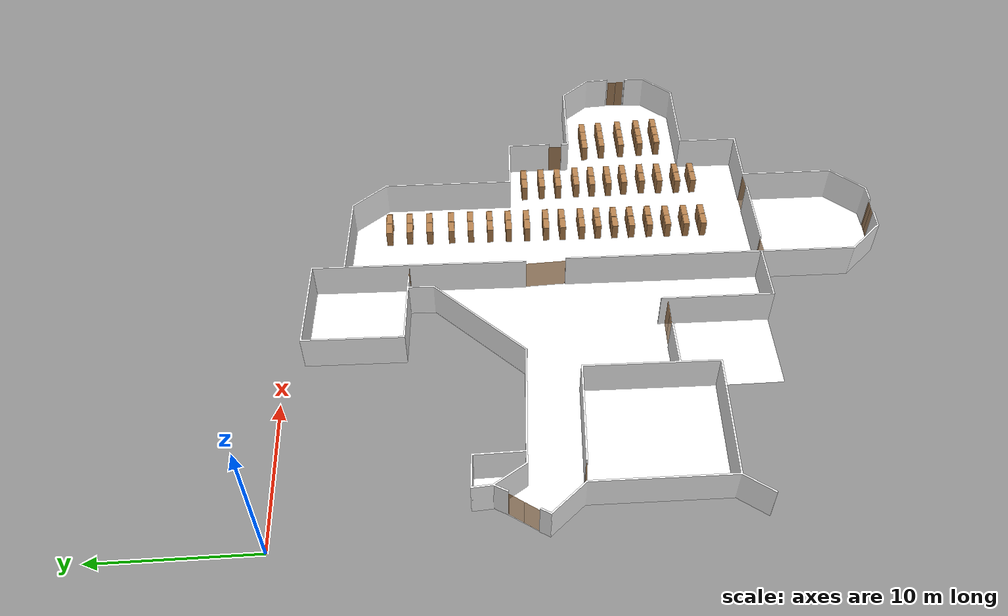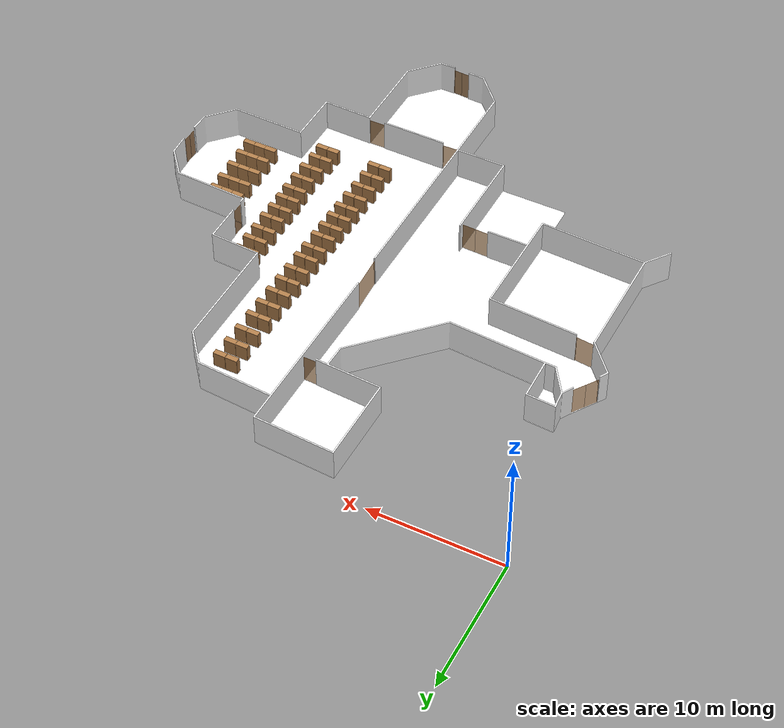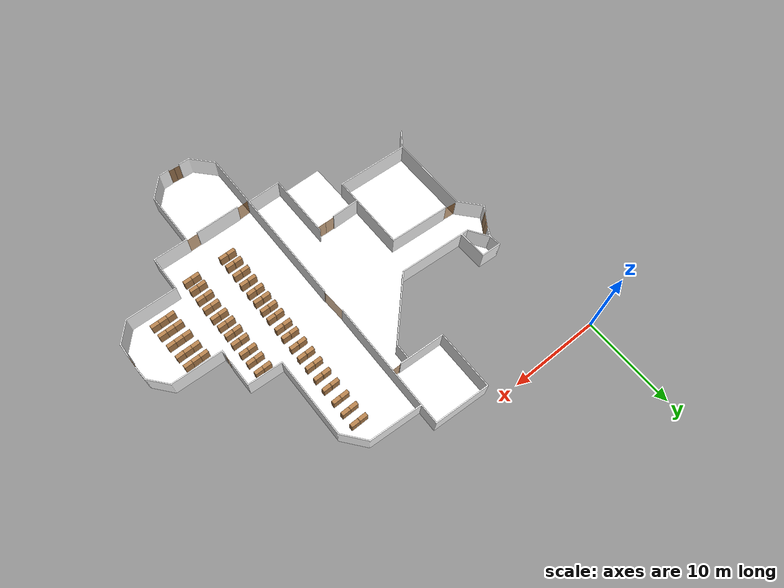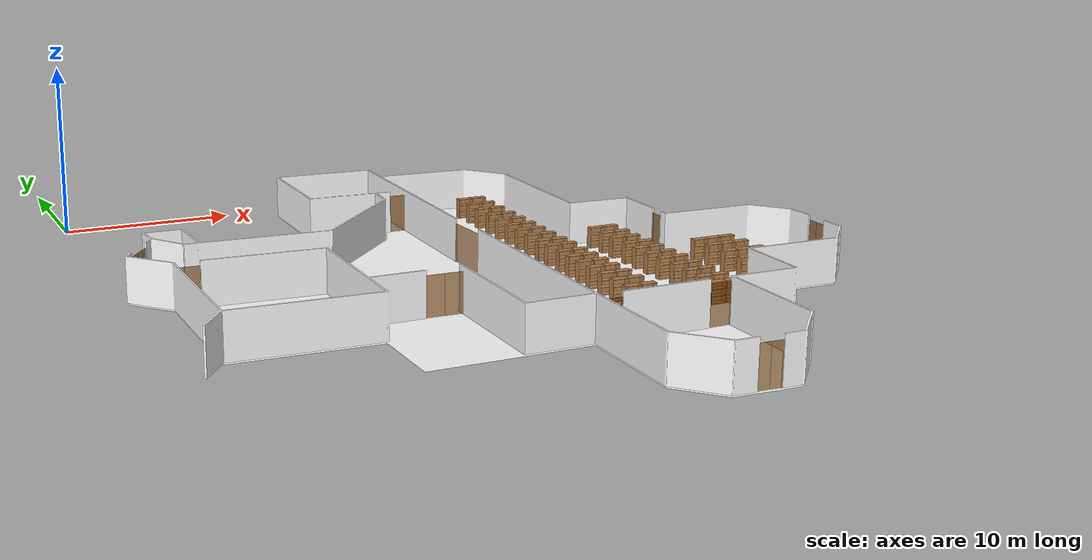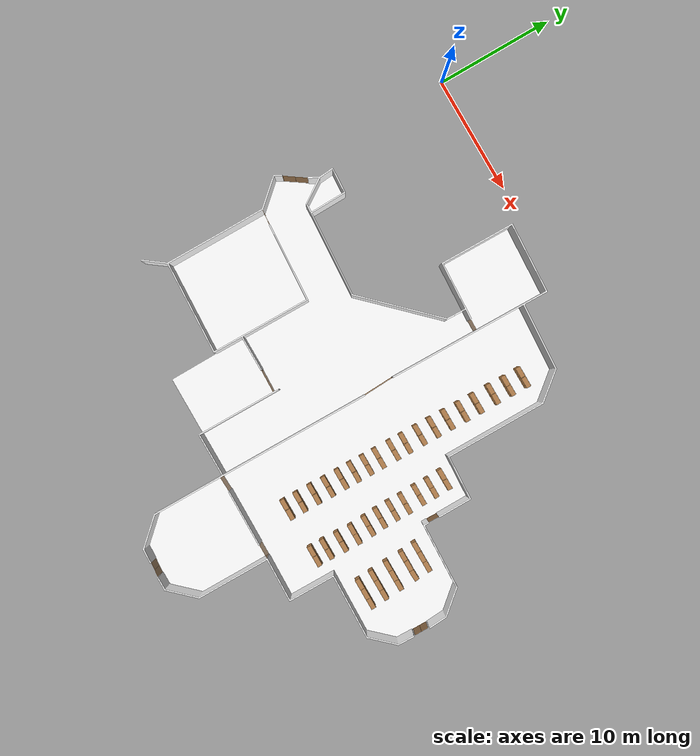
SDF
<sdf version="1.7">
 <world name="world">
  <scene><ambient>0.8 0.8 0.8 1.0</ambient><background>0 0 0</background><grid>false</grid></scene>
  <include><uri>model://sun</uri></include>
  <include>
   <name>OpenRobotics/Bookshelf</name>
   <uri>model://Bookshelf</uri>
   <pose>28.467041090443733 -15.898008054667084 0.0 0 0 0.0</pose>
   <static>True</static>
  </include>
  <include>
   <name>OpenRobotics/Bookshelf_2</name>
   <uri>model://Bookshelf</uri>
   <pose>28.510822227900935 -17.1345104671964 0.0 0 0 0.0</pose>
   <static>True</static>
  </include>
  <include>
   <name>OpenRobotics/Bookshelf_3</name>
   <uri>model://Bookshelf</uri>
   <pose>28.505506946037123 -18.310516579565203 0.0 0 0 0.0</pose>
   <static>True</static>
  </include>
  <include>
   <name>OpenRobotics/Bookshelf_4</name>
   <uri>model://Bookshelf</uri>
   <pose>28.557191068370784 -19.618425607659702 0.0 0 0 0.0</pose>
   <static>True</static>
  </include>
  <include>
   <name>OpenRobotics/Bookshelf_5</name>
   <uri>model://Bookshelf</uri>
   <pose>28.53998634023265 -20.75428735437286 0.0 0 0 0.0</pose>
   <static>True</static>
  </include>
  <include>
   <name>OpenRobotics/Bookshelf_6</name>
   <uri>model://Bookshelf</uri>
   <pose>28.547609573432066 -21.934070114381743 0.0 0 0 0.0</pose>
   <static>True</static>
  </include>
  <include>
   <name>OpenRobotics/Bookshelf_7</name>
   <uri>model://Bookshelf</uri>
   <pose>28.608805252785185 -23.06608527553556 0.0 0 0 0.0035</pose>
   <static>True</static>
  </include>
  <include>
   <name>OpenRobotics/Bookshelf_8</name>
   <uri>model://Bookshelf</uri>
   <pose>28.639368123502116 -24.351054666112546 0.0 0 0 -0.0078</pose>
   <static>True</static>
  </include>
  <include>
   <name>OpenRobotics/Bookshelf_9</name>
   <uri>model://Bookshelf</uri>
   <pose>28.608805252785185 -25.605461185972604 0.0 0 0 0.006</pose>
   <static>True</static>
  </include>
  <include>
   <name>OpenRobotics/Bookshelf_10</name>
   <uri>model://Bookshelf</uri>
   <pose>28.547609573432066 -26.89043057654959 0.0 0 0 -0.0045</pose>
   <static>True</static>
  </include>
  <include>
   <name>OpenRobotics/Bookshelf_11</name>
   <uri>model://Bookshelf</uri>
   <pose>28.547609573432066 -28.02244573770341 0.0 0 0 -0.0025</pose>
   <static>True</static>
  </include>
  <include>
   <name>OpenRobotics/Bookshelf_12</name>
   <uri>model://Bookshelf</uri>
   <pose>31.55927625263667 -20.608256978956504 0.0 0 0 0.0</pose>
   <static>True</static>
  </include>
  <include>
   <name>OpenRobotics/Bookshelf_13</name>
   <uri>model://Bookshelf</uri>
   <pose>31.670897171776762 -21.87336400046345 0.0 0 0 0.0</pose>
   <static>True</static>
  </include>
  <include>
   <name>OpenRobotics/Bookshelf_14</name>
   <uri>model://Bookshelf</uri>
   <pose>31.70810414482346 -23.324505887203877 0.0 0 0 0.0</pose>
   <static>True</static>
  </include>
  <include>
   <name>OpenRobotics/Bookshelf_15</name>
   <uri>model://Bookshelf</uri>
   <pose>31.782518090916852 -24.73844080089761 0.0 0 0 0.0</pose>
   <static>True</static>
  </include>
  <include>
   <name>OpenRobotics/Bookshelf_16</name>
   <uri>model://Bookshelf</uri>
   <pose>31.857001974929506 -26.003547822404556 0.0 0 0 0.0</pose>
   <static>True</static>
  </include>
  <include>
   <name>OpenRobotics/Bookshelf_17</name>
   <uri>model://Bookshelf</uri>
   <pose>32.45231354367665 -20.608256978956504 0.0 0 0 0.0</pose>
   <static>True</static>
  </include>
  <include>
   <name>OpenRobotics/Bookshelf_18</name>
   <uri>model://Bookshelf</uri>
   <pose>32.52672748977004 -21.87336400046345 0.0 0 0 0.0</pose>
   <static>True</static>
  </include>
  <include>
   <name>OpenRobotics/Bookshelf_19</name>
   <uri>model://Bookshelf</uri>
   <pose>32.60114143586344 -23.324505887203877 0.0 0 0 0.0</pose>
   <static>True</static>
  </include>
  <include>
   <name>OpenRobotics/Bookshelf_20</name>
   <uri>model://Bookshelf</uri>
   <pose>32.67555538195683 -24.73844080089761 0.0 0 0 0.0</pose>
   <static>True</static>
  </include>
  <include>
   <name>OpenRobotics/Bookshelf_21</name>
   <uri>model://Bookshelf</uri>
   <pose>32.74996932805022 -26.003547822404556 0.0 0 0 0.0</pose>
   <static>True</static>
  </include>
  <include>
   <name>OpenRobotics/Bookshelf_22</name>
   <uri>model://Bookshelf</uri>
   <pose>33.34535083471663 -20.608256978956504 0.0 0 0 0.0</pose>
   <static>True</static>
  </include>
  <include>
   <name>OpenRobotics/Bookshelf_23</name>
   <uri>model://Bookshelf</uri>
   <pose>33.41976478081002 -21.87336400046345 0.0 0 0 0.037</pose>
   <static>True</static>
  </include>
  <include>
   <name>OpenRobotics/Bookshelf_24</name>
   <uri>model://Bookshelf</uri>
   <pose>33.494178726903414 -23.324505887203877 0.0 0 0 0.0</pose>
   <static>True</static>
  </include>
  <include>
   <name>OpenRobotics/Bookshelf_25</name>
   <uri>model://Bookshelf</uri>
   <pose>33.56859267299681 -24.73844080089761 0.0 0 0 0.0</pose>
   <static>True</static>
  </include>
  <include>
   <name>OpenRobotics/Bookshelf_26</name>
   <uri>model://Bookshelf</uri>
   <pose>33.6430066190902 -26.003547822404556 0.0 0 0 0.0</pose>
   <static>True</static>
  </include>
  <include>
   <name>OpenRobotics/Bookshelf_27</name>
   <uri>model://Bookshelf</uri>
   <pose>23.45130333482354 -17.12653754440068 0.0 0 0 -0.0129</pose>
   <static>True</static>
  </include>
  <include>
   <name>OpenRobotics/Bookshelf_28</name>
   <uri>model://Bookshelf</uri>
   <pose>24.377561137512355 -17.143672334619552 0.0 0 0 -0.0167</pose>
   <static>True</static>
  </include>
  <include>
   <name>OpenRobotics/Bookshelf_29</name>
   <uri>model://Bookshelf</uri>
   <pose>23.42689500100155 -18.265896187076873 0.0 0 0 -0.0059</pose>
   <static>True</static>
  </include>
  <include>
   <name>OpenRobotics/Bookshelf_30</name>
   <uri>model://Bookshelf</uri>
   <pose>24.318883223252623 -20.727151441699707 0.0 0 0 0.0</pose>
   <static>True</static>
  </include>
  <include>
   <name>OpenRobotics/Bookshelf_31</name>
   <uri>model://Bookshelf</uri>
   <pose>24.30601464610865 -21.893925748726097 0.0 0 0 -0.0173</pose>
   <static>True</static>
  </include>
  <include>
   <name>OpenRobotics/Bookshelf_32</name>
   <uri>model://Bookshelf</uri>
   <pose>24.276780595857677 -24.300069922971492 0.0 0 0 -0.006</pose>
   <static>True</static>
  </include>
  <include>
   <name>OpenRobotics/Bookshelf_33</name>
   <uri>model://Bookshelf</uri>
   <pose>24.21999100541798 -26.846369687415347 0.0 0 0 -0.0057</pose>
   <static>True</static>
  </include>
  <include>
   <name>OpenRobotics/Bookshelf_34</name>
   <uri>model://Bookshelf</uri>
   <pose>24.28426395321857 -23.04909036115521 0.0 0 0 0.001</pose>
   <static>True</static>
  </include>
  <include>
   <name>OpenRobotics/Bookshelf_35</name>
   <uri>model://Bookshelf</uri>
   <pose>24.23257983088491 -25.56063097972649 0.0 0 0 -0.0217</pose>
   <static>True</static>
  </include>
  <include>
   <name>OpenRobotics/Bookshelf_36</name>
   <uri>model://Bookshelf</uri>
   <pose>24.402319160930645 -14.532050553586197 0.0 0 0 0.0</pose>
   <static>True</static>
  </include>
  <include>
   <name>OpenRobotics/Bookshelf_37</name>
   <uri>model://Bookshelf</uri>
   <pose>24.38616350158142 -15.805759939162211 0.0 0 0 0.0</pose>
   <static>True</static>
  </include>
  <include>
   <name>OpenRobotics/Bookshelf_38</name>
   <uri>model://Bookshelf</uri>
   <pose>24.42525879844816 -13.24316463953061 0.0 0 0 0.0</pose>
   <static>True</static>
  </include>
  <include>
   <name>OpenRobotics/Bookshelf_39</name>
   <uri>model://Bookshelf</uri>
   <pose>24.45512228997248 -11.899027769259066 0.0 0 0 0.0</pose>
   <static>True</static>
  </include>
  <include>
   <name>OpenRobotics/Bookshelf_40</name>
   <uri>model://Bookshelf</uri>
   <pose>24.47008900469427 -10.569857613709312 0.0 0 0 0.0</pose>
   <static>True</static>
  </include>
  <include>
   <name>OpenRobotics/Bookshelf_41</name>
   <uri>model://Bookshelf</uri>
   <pose>24.477991989570732 -9.067381294231522 0.0 0 0 0.0</pose>
   <static>True</static>
  </include>
  <include>
   <name>OpenRobotics/Bookshelf_42</name>
   <uri>model://Bookshelf</uri>
   <pose>24.505967157275016 -7.686946643863669 0.0 0 0 0.0</pose>
   <static>True</static>
  </include>
  <include>
   <name>OpenRobotics/Bookshelf_43</name>
   <uri>model://Bookshelf</uri>
   <pose>24.21999100541798 -28.043916678916446 0.0 0 0 0.0</pose>
   <static>True</static>
  </include>
  <include>
   <name>OpenRobotics/Bookshelf_44</name>
   <uri>model://Bookshelf</uri>
   <pose>23.599991351171806 -7.686946643863669 0.0 0 0 0.0</pose>
   <static>True</static>
  </include>
  <include>
   <name>OpenRobotics/Bookshelf_45</name>
   <uri>model://Bookshelf</uri>
   <pose>23.55418201405604 -9.067381294231522 0.0 0 0 0.0</pose>
   <static>True</static>
  </include>
  <include>
   <name>OpenRobotics/Bookshelf_46</name>
   <uri>model://Bookshelf</uri>
   <pose>23.540544119800202 -10.571955751287133 0.0 0 0 0.0</pose>
   <static>True</static>
  </include>
  <include>
   <name>OpenRobotics/Bookshelf_47</name>
   <uri>model://Bookshelf</uri>
   <pose>23.529214176879968 -11.899027769259066 0.0 0 0 0.0</pose>
   <static>True</static>
  </include>
  <include>
   <name>OpenRobotics/Bookshelf_48</name>
   <uri>model://Bookshelf</uri>
   <pose>23.499350685355644 -13.24316463953061 0.0 0 0 0.0</pose>
   <static>True</static>
  </include>
  <include>
   <name>OpenRobotics/Bookshelf_49</name>
   <uri>model://Bookshelf</uri>
   <pose>24.342102612447178 -19.599752183217095 0.0 0 0 0.0</pose>
   <static>True</static>
  </include>
  <include>
   <name>OpenRobotics/Bookshelf_50</name>
   <uri>model://Bookshelf</uri>
   <pose>23.469417255912063 -14.532050553586197 0.0 0 0 0.0</pose>
   <static>True</static>
  </include>
  <include>
   <name>OpenRobotics/Bookshelf_51</name>
   <uri>model://Bookshelf</uri>
   <pose>23.45130333482354 -15.805759939162211 0.0 0 0 0.0</pose>
   <static>True</static>
  </include>
  <include>
   <name>OpenRobotics/Bookshelf_52</name>
   <uri>model://Bookshelf</uri>
   <pose>24.360426347293483 -18.267155069623563 0.0 0 0 0.0</pose>
   <static>True</static>
  </include>
  <include>
   <name>OpenRobotics/Bookshelf_53</name>
   <uri>model://Bookshelf</uri>
   <pose>23.41066940373307 -19.599752183217095 0.0 0 0 0.0</pose>
   <static>True</static>
  </include>
  <include>
   <name>OpenRobotics/Bookshelf_54</name>
   <uri>model://Bookshelf</uri>
   <pose>23.391786165532675 -20.724353924929275 0.0 0 0 0.0</pose>
   <static>True</static>
  </include>
  <include>
   <name>OpenRobotics/Bookshelf_55</name>
   <uri>model://Bookshelf</uri>
   <pose>23.362831866958743 -21.892526990340883 0.0 0 0 0.0</pose>
   <static>True</static>
  </include>
  <include>
   <name>OpenRobotics/Bookshelf_56</name>
   <uri>model://Bookshelf</uri>
   <pose>23.352411116988897 -23.05321669839159 0.0 0 0 0.0</pose>
   <static>True</static>
  </include>
  <include>
   <name>OpenRobotics/Bookshelf_57</name>
   <uri>model://Bookshelf</uri>
   <pose>23.299817801704844 -25.56063097972649 0.0 0 0 0.0</pose>
   <static>True</static>
  </include>
  <include>
   <name>OpenRobotics/Bookshelf_58</name>
   <uri>model://Bookshelf</uri>
   <pose>23.337584278105627 -24.30013986089075 0.0 0 0 0.0</pose>
   <static>True</static>
  </include>
  <include>
   <name>OpenRobotics/Bookshelf_59</name>
   <uri>model://Bookshelf</uri>
   <pose>23.28715903831866 -26.846369687415347 0.0 0 0 0.0</pose>
   <static>True</static>
  </include>
  <include>
   <name>OpenRobotics/Bookshelf_60</name>
   <uri>model://Bookshelf</uri>
   <pose>23.28715903831866 -28.043916678916446 0.0 0 0 0.0</pose>
   <static>True</static>
  </include>
  <include>
   <name>OpenRobotics/Bookshelf_61</name>
   <uri>model://Bookshelf</uri>
   <pose>27.547567265923206 -15.898008054667084 0.0 0 0 0.0</pose>
   <static>True</static>
  </include>
  <include>
   <name>OpenRobotics/Bookshelf_62</name>
   <uri>model://Bookshelf</uri>
   <pose>27.597992505710174 -17.1345104671964 0.0 0 0 0.0</pose>
   <static>True</static>
  </include>
  <include>
   <name>OpenRobotics/Bookshelf_63</name>
   <uri>model://Bookshelf</uri>
   <pose>27.576241812820093 -18.310516579565203 0.0 0 0 0.0</pose>
   <static>True</static>
  </include>
  <include>
   <name>OpenRobotics/Bookshelf_64</name>
   <uri>model://Bookshelf</uri>
   <pose>27.627855997234494 -19.618425607659702 0.0 0 0 0.0</pose>
   <static>True</static>
  </include>
  <include>
   <name>OpenRobotics/Bookshelf_65</name>
   <uri>model://Bookshelf</uri>
   <pose>27.610651269096362 -20.75428735437286 0.0 0 0 0.0</pose>
   <static>True</static>
  </include>
  <include>
   <name>OpenRobotics/Bookshelf_66</name>
   <uri>model://Bookshelf</uri>
   <pose>27.629744321054535 -21.934070114381743 0.0 0 0 0.0</pose>
   <static>True</static>
  </include>
  <include>
   <name>OpenRobotics/Bookshelf_67</name>
   <uri>model://Bookshelf</uri>
   <pose>27.690940000407654 -23.06608527553556 0.0 0 0 0.0</pose>
   <static>True</static>
  </include>
  <include>
   <name>OpenRobotics/Bookshelf_68</name>
   <uri>model://Bookshelf</uri>
   <pose>27.752135679760773 -24.351054666112546 0.0 0 0 0.0</pose>
   <static>True</static>
  </include>
  <include>
   <name>OpenRobotics/Bookshelf_69</name>
   <uri>model://Bookshelf</uri>
   <pose>27.690940000407654 -25.605461185972604 0.0 0 0 0.0</pose>
   <static>True</static>
  </include>
  <include>
   <name>OpenRobotics/Bookshelf_70</name>
   <uri>model://Bookshelf</uri>
   <pose>27.629744321054535 -26.89043057654959 0.0 0 0 0.0</pose>
   <static>True</static>
  </include>
  <include>
   <name>OpenRobotics/Bookshelf_71</name>
   <uri>model://Bookshelf</uri>
   <pose>27.629744321054535 -28.02244573770341 0.0 0 0 0.0</pose>
   <static>True</static>
  </include>
  <include>
   <name>OpenRobotics/Bookshelf_72</name>
   <uri>model://Bookshelf</uri>
   <pose>23.591948490456822 -6.306302179738034 0.0 0 0 0.0001</pose>
   <static>True</static>
  </include>
  <include>
   <name>OpenRobotics/Bookshelf_73</name>
   <uri>model://Bookshelf</uri>
   <pose>24.522682319978323 -6.306302179738034 0.0 0 0 -0.0052</pose>
   <static>True</static>
  </include>
  <model name="entry_door">
   <pose>14.039827477829334 -24.3966192205109 0.0 0 0 3.110451014736988</pose>
   <link name="right">
    <pose>0.5227946468305896 0 1.11 0 0 0</pose>
    <visual name="right_visual">
     <geometry><box><size>1.0355892936611792 0.03 2.2</size></box></geometry>
     <material><ambient>0.5 0.25 0 0.6</ambient><diffuse>0.5 0.25 0 0.6</diffuse></material>
    </visual>
    <collision name="right_collision">
     <geometry><box><size>1.0355892936611792 0.03 2.2</size></box></geometry>
     <surface><contact><collide_bitmask>0x02</collide_bitmask></contact></surface>
    </collision>
    <inertial>
     <mass>50.0</mass>
     <inertia><ixx>20.17041666666667</ixx><iyy>24.635188271440253</iyy><izz>4.472271604773584</izz></inertia>
    </inertial>
   </link>
   <joint name="right_joint" type="revolute">
    <parent>world</parent>
    <child>right</child>
    <axis><xyz>0 0 -1</xyz><limit><lower>0</lower><upper>1.57</upper></limit></axis>
    <pose>0.5227946468305896 0 0 0 0 0</pose>
   </joint>
   <link name="left">
    <pose>-0.5227946468305896 0 1.11 0 0 0</pose>
    <visual name="left_visual">
     <geometry><box><size>1.0355892936611792 0.03 2.2</size></box></geometry>
     <material><ambient>0.5 0.25 0 0.6</ambient><diffuse>0.5 0.25 0 0.6</diffuse></material>
    </visual>
    <collision name="left_collision">
     <geometry><box><size>1.0355892936611792 0.03 2.2</size></box></geometry>
     <surface><contact><collide_bitmask>0x02</collide_bitmask></contact></surface>
    </collision>
    <inertial>
     <mass>50.0</mass>
     <inertia><ixx>20.17041666666667</ixx><iyy>24.635188271440253</iyy><izz>4.472271604773584</izz></inertia>
    </inertial>
   </link>
   <joint name="left_joint" type="revolute">
    <parent>world</parent>
    <child>left</child>
    <axis><xyz>0 0 -1</xyz><limit><lower>-1.57</lower><upper>0</upper></limit></axis>
    <pose>-0.5227946468305896 0 0 0 0 0</pose>
   </joint>
   <plugin name="door" filename="libdoor.so">
    <v_max_door>0.5</v_max_door>
    <a_max_door>0.3</a_max_door>
    <a_nom_door>0.15</a_nom_door>
    <dx_min_door>0.01</dx_min_door>
    <f_max_door>500.0</f_max_door>
    <door name="entry_door" type="DoubleSwingDoor" left_joint_name="left_joint" right_joint_name="right_joint"/>
   </plugin>
  </model>
  <model name="store_door_2">
   <pose>19.46214932707165 -31.427618119628388 0.0 0 0 -3.102625101354875</pose>
   <link name="right">
    <pose>0 0 1.11 0 0 0</pose>
    <visual name="right_visual">
     <geometry><box><size>1.3059017723701887 0.03 2.2</size></box></geometry>
     <material><ambient>0.5 0.25 0 0.6</ambient><diffuse>0.5 0.25 0 0.6</diffuse></material>
    </visual>
    <collision name="right_collision">
     <geometry><box><size>1.3059017723701887 0.03 2.2</size></box></geometry>
     <surface><contact><collide_bitmask>0x02</collide_bitmask></contact></surface>
    </collision>
    <inertial>
     <mass>50.0</mass>
     <inertia><ixx>20.17041666666667</ixx><iyy>27.27241432949834</iyy><izz>7.109497662831667</izz></inertia>
    </inertial>
   </link>
   <joint name="right_joint" type="revolute">
    <parent>world</parent>
    <child>right</child>
    <axis><xyz>0 0 -1</xyz><limit><lower>0</lower><upper>1.57</upper></limit></axis>
    <pose>0.6579508861850943 0 0 0 0 0</pose>
   </joint>
   <plugin name="door" filename="libdoor.so">
    <v_max_door>0.5</v_max_door>
    <a_max_door>0.3</a_max_door>
    <a_nom_door>0.15</a_nom_door>
    <dx_min_door>0.01</dx_min_door>
    <f_max_door>500.0</f_max_door>
    <door name="store_door_2" type="SwingDoor" left_joint_name="empty_joint" right_joint_name="right_joint"/>
   </plugin>
  </model>
  <model name="store_door_1">
   <pose>25.593571739698284 -31.4454872579995 0.0 0 0 0.0</pose>
   <link name="right">
    <pose>0 0 1.11 0 0 0</pose>
    <visual name="right_visual">
     <geometry><box><size>1.2933630633425517 0.03 2.2</size></box></geometry>
     <material><ambient>0.5 0.25 0 0.6</ambient><diffuse>0.5 0.25 0 0.6</diffuse></material>
    </visual>
    <collision name="right_collision">
     <geometry><box><size>1.2933630633425517 0.03 2.2</size></box></geometry>
     <surface><contact><collide_bitmask>0x02</collide_bitmask></contact></surface>
    </collision>
    <inertial>
     <mass>50.0</mass>
     <inertia><ixx>20.17041666666667</ixx><iyy>27.136616723411795</iyy><izz>6.973700056745122</izz></inertia>
    </inertial>
   </link>
   <joint name="right_joint" type="revolute">
    <parent>world</parent>
    <child>right</child>
    <axis><xyz>0 0 1</xyz><limit><lower>0</lower><upper>1.57</upper></limit></axis>
    <pose>0.6516815316712758 0 0 0 0 0</pose>
   </joint>
   <plugin name="door" filename="libdoor.so">
    <v_max_door>0.5</v_max_door>
    <a_max_door>0.3</a_max_door>
    <a_nom_door>0.15</a_nom_door>
    <dx_min_door>0.01</dx_min_door>
    <f_max_door>500.0</f_max_door>
    <door name="store_door_1" type="SwingDoor" left_joint_name="empty_joint" right_joint_name="right_joint"/>
   </plugin>
  </model>
  <model name="back_door">
   <pose>37.35128994309109 -23.761373099865885 0.0 0 0 1.5628379969055912</pose>
   <link name="right">
    <pose>0.2965986235943562 0 1.11 0 0 0</pose>
    <visual name="right_visual">
     <geometry><box><size>0.5831972471887124 0.03 2.2</size></box></geometry>
     <material><ambient>0.5 0.25 0 0.6</ambient><diffuse>0.5 0.25 0 0.6</diffuse></material>
    </visual>
    <collision name="right_collision">
     <geometry><box><size>0.5831972471887124 0.03 2.2</size></box></geometry>
     <surface><contact><collide_bitmask>0x02</collide_bitmask></contact></surface>
    </collision>
    <inertial>
     <mass>50.0</mass>
     <inertia><ixx>20.17041666666667</ixx><iyy>21.58382928803539</iyy><izz>1.420912621368717</izz></inertia>
    </inertial>
   </link>
   <joint name="right_joint" type="revolute">
    <parent>world</parent>
    <child>right</child>
    <axis><xyz>0 0 -1</xyz><limit><lower>0</lower><upper>1.57</upper></limit></axis>
    <pose>0.2965986235943562 0 0 0 0 0</pose>
   </joint>
   <link name="left">
    <pose>-0.2965986235943562 0 1.11 0 0 0</pose>
    <visual name="left_visual">
     <geometry><box><size>0.5831972471887124 0.03 2.2</size></box></geometry>
     <material><ambient>0.5 0.25 0 0.6</ambient><diffuse>0.5 0.25 0 0.6</diffuse></material>
    </visual>
    <collision name="left_collision">
     <geometry><box><size>0.5831972471887124 0.03 2.2</size></box></geometry>
     <surface><contact><collide_bitmask>0x02</collide_bitmask></contact></surface>
    </collision>
    <inertial>
     <mass>50.0</mass>
     <inertia><ixx>20.17041666666667</ixx><iyy>21.58382928803539</iyy><izz>1.420912621368717</izz></inertia>
    </inertial>
   </link>
   <joint name="left_joint" type="revolute">
    <parent>world</parent>
    <child>left</child>
    <axis><xyz>0 0 -1</xyz><limit><lower>-1.57</lower><upper>0</upper></limit></axis>
    <pose>-0.2965986235943562 0 0 0 0 0</pose>
   </joint>
   <plugin name="door" filename="libdoor.so">
    <v_max_door>0.5</v_max_door>
    <a_max_door>0.3</a_max_door>
    <a_nom_door>0.15</a_nom_door>
    <dx_min_door>0.01</dx_min_door>
    <f_max_door>500.0</f_max_door>
    <door name="back_door" type="DoubleSwingDoor" left_joint_name="left_joint" right_joint_name="right_joint"/>
   </plugin>
  </model>
  <model name="balcony_2">
   <pose>30.16719693871191 -18.47626944821308 0.0 0 0 -1.5947476055071845</pose>
   <link name="right">
    <pose>0 0 1.11 0 0 0</pose>
    <visual name="right_visual">
     <geometry><box><size>0.9916584218044624 0.03 2.2</size></box></geometry>
     <material><ambient>0.5 0.25 0 0.6</ambient><diffuse>0.5 0.25 0 0.6</diffuse></material>
    </visual>
    <collision name="right_collision">
     <geometry><box><size>0.9916584218044624 0.03 2.2</size></box></geometry>
     <surface><contact><collide_bitmask>0x02</collide_bitmask></contact></surface>
    </collision>
    <inertial>
     <mass>50.0</mass>
     <inertia><ixx>20.17041666666667</ixx><iyy>24.264110106398828</iyy><izz>4.101193439732155</izz></inertia>
    </inertial>
   </link>
   <joint name="right_joint" type="revolute">
    <parent>world</parent>
    <child>right</child>
    <axis><xyz>0 0 -1</xyz><limit><lower>0</lower><upper>1.57</upper></limit></axis>
    <pose>0.5008292109022312 0 0 0 0 0</pose>
   </joint>
   <plugin name="door" filename="libdoor.so">
    <v_max_door>0.5</v_max_door>
    <a_max_door>0.3</a_max_door>
    <a_nom_door>0.15</a_nom_door>
    <dx_min_door>0.01</dx_min_door>
    <f_max_door>500.0</f_max_door>
    <door name="balcony_2" type="SwingDoor" left_joint_name="empty_joint" right_joint_name="right_joint"/>
   </plugin>
  </model>
  <model name="office_door">
   <pose>18.376992571822505 -7.963690990378291 0.0 0 0 -0.016509382078071694</pose>
   <link name="right">
    <pose>0 0 1.11 0 0 0</pose>
    <visual name="right_visual">
     <geometry><box><size>1.0152197962291003 0.03 2.2</size></box></geometry>
     <material><ambient>0.5 0.25 0 0.6</ambient><diffuse>0.5 0.25 0 0.6</diffuse></material>
    </visual>
    <collision name="right_collision">
     <geometry><box><size>1.0152197962291003 0.03 2.2</size></box></geometry>
     <surface><contact><collide_bitmask>0x02</collide_bitmask></contact></surface>
    </collision>
    <inertial>
     <mass>50.0</mass>
     <inertia><ixx>20.17041666666667</ixx><iyy>24.46113014439774</iyy><izz>4.298213477731066</izz></inertia>
    </inertial>
   </link>
   <joint name="right_joint" type="revolute">
    <parent>world</parent>
    <child>right</child>
    <axis><xyz>0 0 -1</xyz><limit><lower>0</lower><upper>1.57</upper></limit></axis>
    <pose>0.5126098981145502 0 0 0 0 0</pose>
   </joint>
   <plugin name="door" filename="libdoor.so">
    <v_max_door>0.5</v_max_door>
    <a_max_door>0.3</a_max_door>
    <a_nom_door>0.15</a_nom_door>
    <dx_min_door>0.01</dx_min_door>
    <f_max_door>500.0</f_max_door>
    <door name="office_door" type="SwingDoor" left_joint_name="empty_joint" right_joint_name="right_joint"/>
   </plugin>
  </model>
  <model name="hall_door">
   <pose>1.088199054736985 -14.341189971923725 0.0 0 0 0.9648284635337379</pose>
   <link name="right">
    <pose>0.5304365679172806 0 1.11 0 0 0</pose>
    <visual name="right_visual">
     <geometry><box><size>1.050873135834561 0.03 2.2</size></box></geometry>
     <material><ambient>0.5 0.25 0 0.6</ambient><diffuse>0.5 0.25 0 0.6</diffuse></material>
    </visual>
    <collision name="right_collision">
     <geometry><box><size>1.050873135834561 0.03 2.2</size></box></geometry>
     <surface><contact><collide_bitmask>0x02</collide_bitmask></contact></surface>
    </collision>
    <inertial>
     <mass>50.0</mass>
     <inertia><ixx>20.17041666666667</ixx><iyy>24.768059781744853</iyy><izz>4.6051431150781825</izz></inertia>
    </inertial>
   </link>
   <joint name="right_joint" type="revolute">
    <parent>world</parent>
    <child>right</child>
    <axis><xyz>0 0 -1</xyz><limit><lower>0</lower><upper>1.57</upper></limit></axis>
    <pose>0.5304365679172806 0 0 0 0 0</pose>
   </joint>
   <link name="left">
    <pose>-0.5304365679172806 0 1.11 0 0 0</pose>
    <visual name="left_visual">
     <geometry><box><size>1.050873135834561 0.03 2.2</size></box></geometry>
     <material><ambient>0.5 0.25 0 0.6</ambient><diffuse>0.5 0.25 0 0.6</diffuse></material>
    </visual>
    <collision name="left_collision">
     <geometry><box><size>1.050873135834561 0.03 2.2</size></box></geometry>
     <surface><contact><collide_bitmask>0x02</collide_bitmask></contact></surface>
    </collision>
    <inertial>
     <mass>50.0</mass>
     <inertia><ixx>20.17041666666667</ixx><iyy>24.768059781744853</iyy><izz>4.6051431150781825</izz></inertia>
    </inertial>
   </link>
   <joint name="left_joint" type="revolute">
    <parent>world</parent>
    <child>left</child>
    <axis><xyz>0 0 -1</xyz><limit><lower>-1.57</lower><upper>0</upper></limit></axis>
    <pose>-0.5304365679172806 0 0 0 0 0</pose>
   </joint>
   <plugin name="door" filename="libdoor.so">
    <v_max_door>0.5</v_max_door>
    <a_max_door>0.3</a_max_door>
    <a_nom_door>0.15</a_nom_door>
    <dx_min_door>0.01</dx_min_door>
    <f_max_door>500.0</f_max_door>
    <door name="hall_door" type="DoubleSwingDoor" left_joint_name="left_joint" right_joint_name="right_joint"/>
   </plugin>
  </model>
  <model name="main_door">
   <pose>18.841730045309912 -16.92305316831165 0.0 0 0 1.615982625841251</pose>
   <link name="right">
    <pose>0 0 1.11 0 0 0</pose>
    <visual name="right_visual">
     <geometry><box><size>2.7103544682846876 0.03 2.2</size></box></geometry>
     <material><ambient>0.5 0.25 0 0.6</ambient><diffuse>0.5 0.25 0 0.6</diffuse></material>
    </visual>
    <collision name="right_collision">
     <geometry><box><size>2.7103544682846876 0.03 2.2</size></box></geometry>
     <surface><contact><collide_bitmask>0x02</collide_bitmask></contact></surface>
    </collision>
    <inertial>
     <mass>50.0</mass>
     <inertia><ixx>20.17041666666667</ixx><iyy>50.77508893229489</iyy><izz>30.612172265628217</izz></inertia>
    </inertial>
   </link>
   <joint name="right_joint" type="revolute">
    <parent>world</parent>
    <child>right</child>
    <axis><xyz>0 0 -1</xyz><limit><lower>0</lower><upper>1.57</upper></limit></axis>
    <pose>1.3601772341423437 0 0 0 0 0</pose>
   </joint>
   <plugin name="door" filename="libdoor.so">
    <v_max_door>0.5</v_max_door>
    <a_max_door>0.3</a_max_door>
    <a_nom_door>0.15</a_nom_door>
    <dx_min_door>0.01</dx_min_door>
    <f_max_door>500.0</f_max_door>
    <door name="main_door" type="SwingDoor" left_joint_name="empty_joint" right_joint_name="right_joint"/>
   </plugin>
  </model>
  <model name="balcony_1">
   <pose>22.53074547255447 -39.61297734510349 0.0 0 0 -0.0644068211087975</pose>
   <link name="right">
    <pose>0.3373981900200527 0 1.11 0 0 0</pose>
    <visual name="right_visual">
     <geometry><box><size>0.6647963800401054 0.03 2.2</size></box></geometry>
     <material><ambient>0.5 0.25 0 0.6</ambient><diffuse>0.5 0.25 0 0.6</diffuse></material>
    </visual>
    <collision name="right_collision">
     <geometry><box><size>0.6647963800401054 0.03 2.2</size></box></geometry>
     <surface><contact><collide_bitmask>0x02</collide_bitmask></contact></surface>
    </collision>
    <inertial>
     <mass>50.0</mass>
     <inertia><ixx>20.17041666666667</ixx><iyy>22.008142612143455</iyy><izz>1.8452259454767848</izz></inertia>
    </inertial>
   </link>
   <joint name="right_joint" type="revolute">
    <parent>world</parent>
    <child>right</child>
    <axis><xyz>0 0 -1</xyz><limit><lower>0</lower><upper>1.57</upper></limit></axis>
    <pose>0.3373981900200527 0 0 0 0 0</pose>
   </joint>
   <link name="left">
    <pose>-0.3373981900200527 0 1.11 0 0 0</pose>
    <visual name="left_visual">
     <geometry><box><size>0.6647963800401054 0.03 2.2</size></box></geometry>
     <material><ambient>0.5 0.25 0 0.6</ambient><diffuse>0.5 0.25 0 0.6</diffuse></material>
    </visual>
    <collision name="left_collision">
     <geometry><box><size>0.6647963800401054 0.03 2.2</size></box></geometry>
     <surface><contact><collide_bitmask>0x02</collide_bitmask></contact></surface>
    </collision>
    <inertial>
     <mass>50.0</mass>
     <inertia><ixx>20.17041666666667</ixx><iyy>22.008142612143455</iyy><izz>1.8452259454767848</izz></inertia>
    </inertial>
   </link>
   <joint name="left_joint" type="revolute">
    <parent>world</parent>
    <child>left</child>
    <axis><xyz>0 0 -1</xyz><limit><lower>-1.57</lower><upper>0</upper></limit></axis>
    <pose>-0.3373981900200527 0 0 0 0 0</pose>
   </joint>
   <plugin name="door" filename="libdoor.so">
    <v_max_door>0.5</v_max_door>
    <a_max_door>0.3</a_max_door>
    <a_nom_door>0.15</a_nom_door>
    <dx_min_door>0.01</dx_min_door>
    <f_max_door>500.0</f_max_door>
    <door name="balcony_1" type="DoubleSwingDoor" left_joint_name="left_joint" right_joint_name="right_joint"/>
   </plugin>
  </model>
  <model name="digital_library_door">
   <pose>2.741916124616054 -17.956036235792304 0.0 0 0 3.048143923577788</pose>
   <link name="right">
    <pose>0 0 1.11 0 0 0</pose>
    <visual name="right_visual">
     <geometry><box><size>1.3863183137186321 0.03 2.2</size></box></geometry>
     <material><ambient>0.5 0.25 0 0.6</ambient><diffuse>0.5 0.25 0 0.6</diffuse></material>
    </visual>
    <collision name="right_collision">
     <geometry><box><size>1.3863183137186321 0.03 2.2</size></box></geometry>
     <surface><contact><collide_bitmask>0x02</collide_bitmask></contact></surface>
    </collision>
    <inertial>
     <mass>50.0</mass>
     <inertia><ixx>20.17041666666667</ixx><iyy>28.174493612298637</iyy><izz>8.011576945631965</izz></inertia>
    </inertial>
   </link>
   <joint name="right_joint" type="revolute">
    <parent>world</parent>
    <child>right</child>
    <axis><xyz>0 0 -1</xyz><limit><lower>0</lower><upper>1.57</upper></limit></axis>
    <pose>0.6981591568593161 0 0 0 0 0</pose>
   </joint>
   <plugin name="door" filename="libdoor.so">
    <v_max_door>0.5</v_max_door>
    <a_max_door>0.3</a_max_door>
    <a_nom_door>0.15</a_nom_door>
    <dx_min_door>0.01</dx_min_door>
    <f_max_door>500.0</f_max_door>
    <door name="digital_library_door" type="SwingDoor" left_joint_name="empty_joint" right_joint_name="right_joint"/>
   </plugin>
  </model>
  <include><name>libr_L1</name><uri>model://libr_L1</uri></include>
  <rmf_charger_waypoints name="charger_waypoints">
   <rmf_vertex name="start" x="19.77508654680369" y="-4.375456104788409" level="L1"/>
   <rmf_vertex name="start_2" x="13.37947364416973" y="-16.781673664526128" level="L1"/>
   <rmf_vertex name="stop" x="19.537647310913588" y="-24.8993679531165" level="L1"/>
  </rmf_charger_waypoints>
 </world>
</sdf>

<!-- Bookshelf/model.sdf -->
<sdf version="1.5">
    <model name="bookshelf">
        <static>true</static>
        <link name="link">
            <inertial>
                <mass>1.0</mass>
            </inertial>
            <collision name="back">
                <pose>0 0.005 0.6 0 0 0</pose>
                <geometry>
                    <box>
                        <size>0.9 0.01 1.2</size>
                    </box>
                </geometry>
            </collision>
            <visual name="visual1">
                <pose>0 0.005 0.6 0 0 0</pose>
                <geometry>
                    <box>
                        <size>0.9 0.01 1.2</size>
                    </box>
                </geometry>
                <material>
                    <diffuse>1.0 1.0 1.0</diffuse>
                    <script>
                        <uri>file://media/materials/scripts/gazebo.material</uri>
                        <name>Gazebo/Wood</name>
                    </script>

                    <pbr>
                        <metal>
                            <albedo_map>https://fuel.ignitionrobotics.org/1.0/openrobotics/models/bookshelf/3/files/bookshelf_diffuse.jpg</albedo_map>
                        </metal>
                    </pbr>
                </material>
            </visual>
            <collision name="left_side">
                <pose>0.45 -0.195 0.6 0 0 0</pose>
                <geometry>
                    <box>
                        <size>0.02 0.4 1.2</size>
                    </box>
                </geometry>
            </collision>
            <visual name="visual2">
                <pose>0.45 -0.195 0.6 0 0 0</pose>
                <geometry>
                    <box>
                        <size>0.02 0.4 1.2</size>
                    </box>
                </geometry>
                <material>
                    <diffuse>1.0 1.0 1.0</diffuse>
                    <script>
                        <uri>file://media/materials/scripts/gazebo.material</uri>
                        <name>Gazebo/Wood</name>
                    </script>

                    <pbr>
                        <metal>
                            <albedo_map>https://fuel.ignitionrobotics.org/1.0/openrobotics/models/bookshelf/3/files/bookshelf_diffuse.jpg</albedo_map>
                        </metal>
                    </pbr>
                </material>
            </visual>
            <collision name="right_side">
                <pose>-0.45 -0.195 0.6 0 0 0</pose>
                <geometry>
                    <box>
                        <size>0.02 0.4 1.2</size>
                    </box>
                </geometry>
            </collision>
            <visual name="visual3">
                <pose>-0.45 -0.195 0.6 0 0 0</pose>
                <geometry>
                    <box>
                        <size>0.02 0.4 1.2</size>
                    </box>
                </geometry>
                <material>
                    <diffuse>1.0 1.0 1.0</diffuse>
                    <script>
                        <uri>file://media/materials/scripts/gazebo.material</uri>
                        <name>Gazebo/Wood</name>
                    </script>

                    <pbr>
                        <metal>
                            <albedo_map>https://fuel.ignitionrobotics.org/1.0/openrobotics/models/bookshelf/3/files/bookshelf_diffuse.jpg</albedo_map>
                        </metal>
                    </pbr>
                </material>
            </visual>
            <collision name="bottom">
                <pose>0 -0.195 0.03 0 0 0</pose>
                <geometry>
                    <box>
                        <size>0.88 0.4 0.06</size>
                    </box>
                </geometry>
            </collision>
            <visual name="visual4">
                <pose>0 -0.195 0.03 0 0 0</pose>
                <geometry>
                    <box>
                        <size>0.88 0.4 0.06</size>
                    </box>
                </geometry>
                <material>
                    <diffuse>1.0 1.0 1.0</diffuse>
                    <script>
                        <uri>file://media/materials/scripts/gazebo.material</uri>
                        <name>Gazebo/Wood</name>
                    </script>

                    <pbr>
                        <metal>
                            <albedo_map>https://fuel.ignitionrobotics.org/1.0/openrobotics/models/bookshelf/3/files/bookshelf_diffuse.jpg</albedo_map>
                        </metal>
                    </pbr>
                </material>
            </visual>
            <collision name="top">
                <pose>0 -0.195 1.19 0 0 0</pose>
                <geometry>
                    <box>
                        <size>0.88 0.4 0.02</size>
                    </box>
                </geometry>
            </collision>
            <visual name="visual5">
                <pose>0 -0.195 1.19 0 0 0</pose>
                <geometry>
                    <box>
                        <size>0.88 0.4 0.02</size>
                    </box>
                </geometry>
                <material>
                    <diffuse>1.0 1.0 1.0</diffuse>
                    <script>
                        <uri>file://media/materials/scripts/gazebo.material</uri>
                        <name>Gazebo/Wood</name>
                    </script>

                    <pbr>
                        <metal>
                            <albedo_map>https://fuel.ignitionrobotics.org/1.0/openrobotics/models/bookshelf/3/files/bookshelf_diffuse.jpg</albedo_map>
                        </metal>
                    </pbr>
                </material>
            </visual>
            <collision name="low_shelf">
                <pose>0 -0.195 0.43 0 0 0</pose>
                <geometry>
                    <box>
                        <size>0.88 0.4 0.02</size>
                    </box>
                </geometry>
            </collision>
            <visual name="visual6">
                <pose>0 -0.195 0.43 0 0 0</pose>
                <geometry>
                    <box>
                        <size>0.88 0.4 0.02</size>
                    </box>
                </geometry>
                <material>
                    <diffuse>1.0 1.0 1.0</diffuse>
                    <script>
                        <uri>file://media/materials/scripts/gazebo.material</uri>
                        <name>Gazebo/Wood</name>
                    </script>

                    <pbr>
                        <metal>
                            <albedo_map>https://fuel.ignitionrobotics.org/1.0/openrobotics/models/bookshelf/3/files/bookshelf_diffuse.jpg</albedo_map>
                        </metal>
                    </pbr>
                </material>
            </visual>
            <collision name="high_shelf">
                <pose>0 -0.195 0.8 0 0 0</pose>
                <geometry>
                    <box>
                        <size>0.88 0.4 0.02</size>
                    </box>
                </geometry>
            </collision>
            <visual name="visual7">
                <pose>0 -0.195 0.8 0 0 0</pose>
                <geometry>
                    <box>
                        <size>0.88 0.4 0.02</size>
                    </box>
                </geometry>
                <material>
                    <diffuse>1.0 1.0 1.0</diffuse>
                    <script>
                        <uri>file://media/materials/scripts/gazebo.material</uri>
                        <name>Gazebo/Wood</name>
                    </script>

                    <pbr>
                        <metal>
                            <albedo_map>https://fuel.ignitionrobotics.org/1.0/openrobotics/models/bookshelf/3/files/bookshelf_diffuse.jpg</albedo_map>
                        </metal>
                    </pbr>
                </material>
            </visual>
        </link>
    </model>
</sdf>

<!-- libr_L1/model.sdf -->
<sdf version="1.7">
  <model name="libr_L1">
    <static>true</static>
    <link name="floor_1">
      <visual name="visual">
        <geometry>
          <mesh>
            <uri>model://libr_L1/meshes/floor_1.obj</uri>
          </mesh>
        </geometry>
        <material>
          <diffuse>1.0 1.0 1.0</diffuse>
          <specular>0.1 0.1 0.1</specular>
          <pbr>
            <metal>
              <metalness>0.0</metalness>
              <albedo_map>model://libr_L1/meshes/blue_linoleum.png</albedo_map>
            </metal>
          </pbr>
          <script>
            <uri>model://libr_L1/meshes/</uri>
            <name>floor_1_Diffuse</name>
          </script>
        </material>
      </visual>
      <collision name="collision">
        <geometry>
          <mesh>
            <uri>model://libr_L1/meshes/floor_1.obj</uri>
          </mesh>
        </geometry>
        <surface>
          <contact>
            <collide_bitmask>0x01</collide_bitmask>
          </contact>
        </surface>
      </collision>
    </link>
    <link name="wall_1">
      <visual name="wall_1">
        <geometry>
          <mesh>
            <uri>model://libr_L1/meshes/wall_1.obj</uri>
          </mesh>
        </geometry>
        <transparency>0.0</transparency>
        <material>
          <diffuse>1.0 1.0 1.0</diffuse>
          <specular>0.1 0.1 0.1</specular>
          <pbr>
            <metal>
              <metalness>0.0</metalness>
              <albedo_map>model://libr_L1/meshes/default.png</albedo_map>
            </metal>
          </pbr>
          <script>
            <uri>model://libr_L1/meshes/</uri>
            <name>wall_1_Diffuse</name>
          </script>
        </material>
      </visual>
      <collision name="collision">
        <geometry>
          <mesh>
            <uri>model://libr_L1/meshes/wall_1.obj</uri>
          </mesh>
        </geometry>
        <surface>
          <contact>
            <collide_bitmask>0x01</collide_bitmask>
          </contact>
        </surface>
      </collision>
      <pose>0.0907771502613759 -39.72708109901405 0 0 0 0</pose>
    </link>
  </model>
</sdf>
